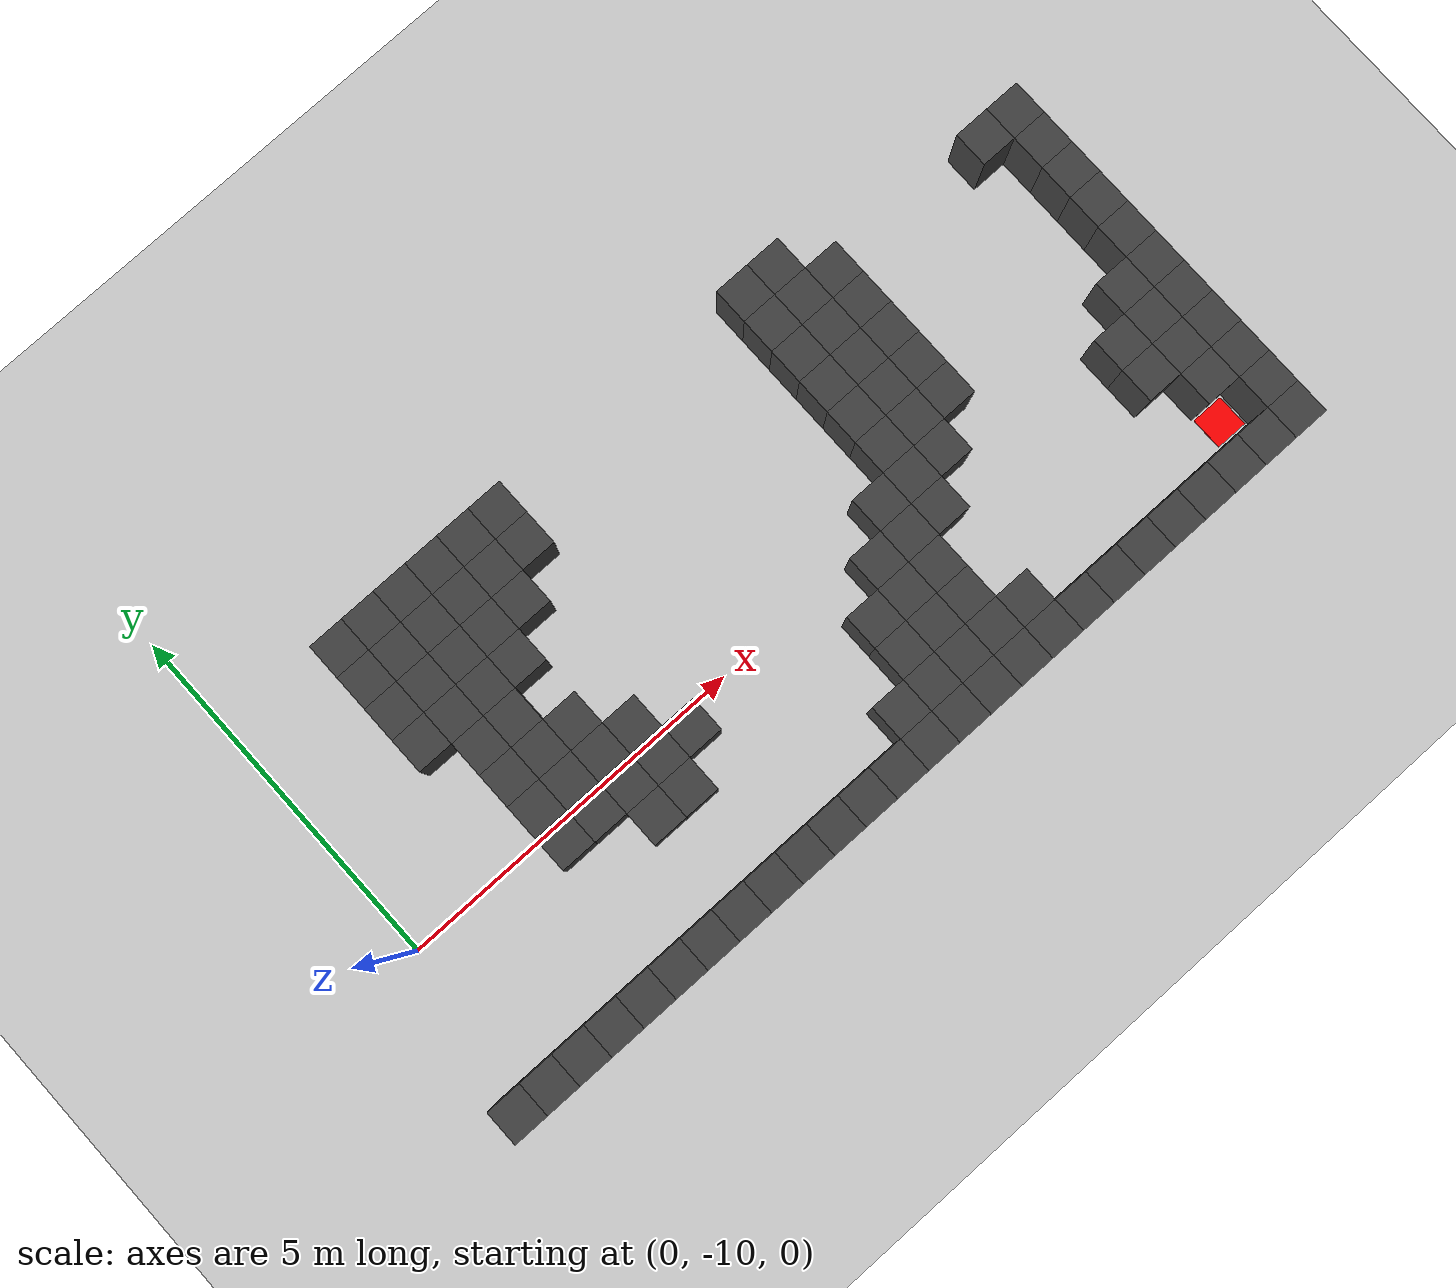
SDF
<sdf version="1.7">
 <world name="map_9152">
  <model name="ground_plane">
   <static>true</static>
   <link name="link">
    <collision name="collision">
     <geometry><plane><normal>0 0 1</normal><size>200 200</size></plane></geometry>
    </collision>
    <visual name="visual">
     <geometry><plane><normal>0 0 1</normal><size>200 200</size></plane></geometry>
     <material><ambient>0.8 0.8 0.8 1</ambient><diffuse>0.8 0.8 0.8 1</diffuse></material>
    </visual>
   </link>
  </model>
  <model name="maze_environment">
   <static>true</static>
   <link name="wall_606">
    <pose>1.750 -6.750 0.500 0 0 0</pose>
    <collision name="col"><geometry><box><size>0.5 0.5 1.0</size></box></geometry></collision>
    <visual name="vis">
     <geometry><box><size>0.5 0.5 1.0</size></box></geometry>
     <material><ambient>0.15 0.15 0.15 1</ambient><diffuse>0.25 0.25 0.25 1</diffuse></material>
    </visual>
   </link>
   <link name="wall_607">
    <pose>2.250 -6.750 0.500 0 0 0</pose>
    <collision name="col"><geometry><box><size>0.5 0.5 1.0</size></box></geometry></collision>
    <visual name="vis">
     <geometry><box><size>0.5 0.5 1.0</size></box></geometry>
     <material><ambient>0.15 0.15 0.15 1</ambient><diffuse>0.25 0.25 0.25 1</diffuse></material>
    </visual>
   </link>
   <link name="wall_608">
    <pose>2.750 -6.750 0.500 0 0 0</pose>
    <collision name="col"><geometry><box><size>0.5 0.5 1.0</size></box></geometry></collision>
    <visual name="vis">
     <geometry><box><size>0.5 0.5 1.0</size></box></geometry>
     <material><ambient>0.15 0.15 0.15 1</ambient><diffuse>0.25 0.25 0.25 1</diffuse></material>
    </visual>
   </link>
   <link name="wall_609">
    <pose>3.250 -6.750 0.500 0 0 0</pose>
    <collision name="col"><geometry><box><size>0.5 0.5 1.0</size></box></geometry></collision>
    <visual name="vis">
     <geometry><box><size>0.5 0.5 1.0</size></box></geometry>
     <material><ambient>0.15 0.15 0.15 1</ambient><diffuse>0.25 0.25 0.25 1</diffuse></material>
    </visual>
   </link>
   <link name="wall_610">
    <pose>3.750 -6.750 0.500 0 0 0</pose>
    <collision name="col"><geometry><box><size>0.5 0.5 1.0</size></box></geometry></collision>
    <visual name="vis">
     <geometry><box><size>0.5 0.5 1.0</size></box></geometry>
     <material><ambient>0.15 0.15 0.15 1</ambient><diffuse>0.25 0.25 0.25 1</diffuse></material>
    </visual>
   </link>
   <link name="wall_611">
    <pose>4.250 -6.750 0.500 0 0 0</pose>
    <collision name="col"><geometry><box><size>0.5 0.5 1.0</size></box></geometry></collision>
    <visual name="vis">
     <geometry><box><size>0.5 0.5 1.0</size></box></geometry>
     <material><ambient>0.15 0.15 0.15 1</ambient><diffuse>0.25 0.25 0.25 1</diffuse></material>
    </visual>
   </link>
   <link name="wall_612">
    <pose>8.250 -6.750 0.500 0 0 0</pose>
    <collision name="col"><geometry><box><size>0.5 0.5 1.0</size></box></geometry></collision>
    <visual name="vis">
     <geometry><box><size>0.5 0.5 1.0</size></box></geometry>
     <material><ambient>0.15 0.15 0.15 1</ambient><diffuse>0.25 0.25 0.25 1</diffuse></material>
    </visual>
   </link>
   <link name="wall_613">
    <pose>8.750 -6.750 0.500 0 0 0</pose>
    <collision name="col"><geometry><box><size>0.5 0.5 1.0</size></box></geometry></collision>
    <visual name="vis">
     <geometry><box><size>0.5 0.5 1.0</size></box></geometry>
     <material><ambient>0.15 0.15 0.15 1</ambient><diffuse>0.25 0.25 0.25 1</diffuse></material>
    </visual>
   </link>
   <link name="wall_624">
    <pose>1.750 -7.250 0.500 0 0 0</pose>
    <collision name="col"><geometry><box><size>0.5 0.5 1.0</size></box></geometry></collision>
    <visual name="vis">
     <geometry><box><size>0.5 0.5 1.0</size></box></geometry>
     <material><ambient>0.15 0.15 0.15 1</ambient><diffuse>0.25 0.25 0.25 1</diffuse></material>
    </visual>
   </link>
   <link name="wall_625">
    <pose>2.250 -7.250 0.500 0 0 0</pose>
    <collision name="col"><geometry><box><size>0.5 0.5 1.0</size></box></geometry></collision>
    <visual name="vis">
     <geometry><box><size>0.5 0.5 1.0</size></box></geometry>
     <material><ambient>0.15 0.15 0.15 1</ambient><diffuse>0.25 0.25 0.25 1</diffuse></material>
    </visual>
   </link>
   <link name="wall_626">
    <pose>2.750 -7.250 0.500 0 0 0</pose>
    <collision name="col"><geometry><box><size>0.5 0.5 1.0</size></box></geometry></collision>
    <visual name="vis">
     <geometry><box><size>0.5 0.5 1.0</size></box></geometry>
     <material><ambient>0.15 0.15 0.15 1</ambient><diffuse>0.25 0.25 0.25 1</diffuse></material>
    </visual>
   </link>
   <link name="wall_627">
    <pose>3.250 -7.250 0.500 0 0 0</pose>
    <collision name="col"><geometry><box><size>0.5 0.5 1.0</size></box></geometry></collision>
    <visual name="vis">
     <geometry><box><size>0.5 0.5 1.0</size></box></geometry>
     <material><ambient>0.15 0.15 0.15 1</ambient><diffuse>0.25 0.25 0.25 1</diffuse></material>
    </visual>
   </link>
   <link name="wall_628">
    <pose>3.750 -7.250 0.500 0 0 0</pose>
    <collision name="col"><geometry><box><size>0.5 0.5 1.0</size></box></geometry></collision>
    <visual name="vis">
     <geometry><box><size>0.5 0.5 1.0</size></box></geometry>
     <material><ambient>0.15 0.15 0.15 1</ambient><diffuse>0.25 0.25 0.25 1</diffuse></material>
    </visual>
   </link>
   <link name="wall_629">
    <pose>4.250 -7.250 0.500 0 0 0</pose>
    <collision name="col"><geometry><box><size>0.5 0.5 1.0</size></box></geometry></collision>
    <visual name="vis">
     <geometry><box><size>0.5 0.5 1.0</size></box></geometry>
     <material><ambient>0.15 0.15 0.15 1</ambient><diffuse>0.25 0.25 0.25 1</diffuse></material>
    </visual>
   </link>
   <link name="wall_630">
    <pose>8.250 -7.250 0.500 0 0 0</pose>
    <collision name="col"><geometry><box><size>0.5 0.5 1.0</size></box></geometry></collision>
    <visual name="vis">
     <geometry><box><size>0.5 0.5 1.0</size></box></geometry>
     <material><ambient>0.15 0.15 0.15 1</ambient><diffuse>0.25 0.25 0.25 1</diffuse></material>
    </visual>
   </link>
   <link name="wall_631">
    <pose>8.750 -7.250 0.500 0 0 0</pose>
    <collision name="col"><geometry><box><size>0.5 0.5 1.0</size></box></geometry></collision>
    <visual name="vis">
     <geometry><box><size>0.5 0.5 1.0</size></box></geometry>
     <material><ambient>0.15 0.15 0.15 1</ambient><diffuse>0.25 0.25 0.25 1</diffuse></material>
    </visual>
   </link>
   <link name="wall_632">
    <pose>9.250 -7.250 0.500 0 0 0</pose>
    <collision name="col"><geometry><box><size>0.5 0.5 1.0</size></box></geometry></collision>
    <visual name="vis">
     <geometry><box><size>0.5 0.5 1.0</size></box></geometry>
     <material><ambient>0.15 0.15 0.15 1</ambient><diffuse>0.25 0.25 0.25 1</diffuse></material>
    </visual>
   </link>
   <link name="wall_633">
    <pose>11.750 -7.250 0.500 0 0 0</pose>
    <collision name="col"><geometry><box><size>0.5 0.5 1.0</size></box></geometry></collision>
    <visual name="vis">
     <geometry><box><size>0.5 0.5 1.0</size></box></geometry>
     <material><ambient>0.15 0.15 0.15 1</ambient><diffuse>0.25 0.25 0.25 1</diffuse></material>
    </visual>
   </link>
   <link name="wall_634">
    <pose>12.250 -7.250 0.500 0 0 0</pose>
    <collision name="col"><geometry><box><size>0.5 0.5 1.0</size></box></geometry></collision>
    <visual name="vis">
     <geometry><box><size>0.5 0.5 1.0</size></box></geometry>
     <material><ambient>0.15 0.15 0.15 1</ambient><diffuse>0.25 0.25 0.25 1</diffuse></material>
    </visual>
   </link>
   <link name="wall_640">
    <pose>1.750 -7.750 0.500 0 0 0</pose>
    <collision name="col"><geometry><box><size>0.5 0.5 1.0</size></box></geometry></collision>
    <visual name="vis">
     <geometry><box><size>0.5 0.5 1.0</size></box></geometry>
     <material><ambient>0.15 0.15 0.15 1</ambient><diffuse>0.25 0.25 0.25 1</diffuse></material>
    </visual>
   </link>
   <link name="wall_641">
    <pose>2.250 -7.750 0.500 0 0 0</pose>
    <collision name="col"><geometry><box><size>0.5 0.5 1.0</size></box></geometry></collision>
    <visual name="vis">
     <geometry><box><size>0.5 0.5 1.0</size></box></geometry>
     <material><ambient>0.15 0.15 0.15 1</ambient><diffuse>0.25 0.25 0.25 1</diffuse></material>
    </visual>
   </link>
   <link name="wall_642">
    <pose>2.750 -7.750 0.500 0 0 0</pose>
    <collision name="col"><geometry><box><size>0.5 0.5 1.0</size></box></geometry></collision>
    <visual name="vis">
     <geometry><box><size>0.5 0.5 1.0</size></box></geometry>
     <material><ambient>0.15 0.15 0.15 1</ambient><diffuse>0.25 0.25 0.25 1</diffuse></material>
    </visual>
   </link>
   <link name="wall_643">
    <pose>3.250 -7.750 0.500 0 0 0</pose>
    <collision name="col"><geometry><box><size>0.5 0.5 1.0</size></box></geometry></collision>
    <visual name="vis">
     <geometry><box><size>0.5 0.5 1.0</size></box></geometry>
     <material><ambient>0.15 0.15 0.15 1</ambient><diffuse>0.25 0.25 0.25 1</diffuse></material>
    </visual>
   </link>
   <link name="wall_644">
    <pose>3.750 -7.750 0.500 0 0 0</pose>
    <collision name="col"><geometry><box><size>0.5 0.5 1.0</size></box></geometry></collision>
    <visual name="vis">
     <geometry><box><size>0.5 0.5 1.0</size></box></geometry>
     <material><ambient>0.15 0.15 0.15 1</ambient><diffuse>0.25 0.25 0.25 1</diffuse></material>
    </visual>
   </link>
   <link name="wall_645">
    <pose>8.250 -7.750 0.500 0 0 0</pose>
    <collision name="col"><geometry><box><size>0.5 0.5 1.0</size></box></geometry></collision>
    <visual name="vis">
     <geometry><box><size>0.5 0.5 1.0</size></box></geometry>
     <material><ambient>0.15 0.15 0.15 1</ambient><diffuse>0.25 0.25 0.25 1</diffuse></material>
    </visual>
   </link>
   <link name="wall_646">
    <pose>8.750 -7.750 0.500 0 0 0</pose>
    <collision name="col"><geometry><box><size>0.5 0.5 1.0</size></box></geometry></collision>
    <visual name="vis">
     <geometry><box><size>0.5 0.5 1.0</size></box></geometry>
     <material><ambient>0.15 0.15 0.15 1</ambient><diffuse>0.25 0.25 0.25 1</diffuse></material>
    </visual>
   </link>
   <link name="wall_647">
    <pose>9.250 -7.750 0.500 0 0 0</pose>
    <collision name="col"><geometry><box><size>0.5 0.5 1.0</size></box></geometry></collision>
    <visual name="vis">
     <geometry><box><size>0.5 0.5 1.0</size></box></geometry>
     <material><ambient>0.15 0.15 0.15 1</ambient><diffuse>0.25 0.25 0.25 1</diffuse></material>
    </visual>
   </link>
   <link name="wall_648">
    <pose>12.250 -7.750 0.500 0 0 0</pose>
    <collision name="col"><geometry><box><size>0.5 0.5 1.0</size></box></geometry></collision>
    <visual name="vis">
     <geometry><box><size>0.5 0.5 1.0</size></box></geometry>
     <material><ambient>0.15 0.15 0.15 1</ambient><diffuse>0.25 0.25 0.25 1</diffuse></material>
    </visual>
   </link>
   <link name="wall_655">
    <pose>1.750 -8.250 0.500 0 0 0</pose>
    <collision name="col"><geometry><box><size>0.5 0.5 1.0</size></box></geometry></collision>
    <visual name="vis">
     <geometry><box><size>0.5 0.5 1.0</size></box></geometry>
     <material><ambient>0.15 0.15 0.15 1</ambient><diffuse>0.25 0.25 0.25 1</diffuse></material>
    </visual>
   </link>
   <link name="wall_656">
    <pose>2.250 -8.250 0.500 0 0 0</pose>
    <collision name="col"><geometry><box><size>0.5 0.5 1.0</size></box></geometry></collision>
    <visual name="vis">
     <geometry><box><size>0.5 0.5 1.0</size></box></geometry>
     <material><ambient>0.15 0.15 0.15 1</ambient><diffuse>0.25 0.25 0.25 1</diffuse></material>
    </visual>
   </link>
   <link name="wall_657">
    <pose>2.750 -8.250 0.500 0 0 0</pose>
    <collision name="col"><geometry><box><size>0.5 0.5 1.0</size></box></geometry></collision>
    <visual name="vis">
     <geometry><box><size>0.5 0.5 1.0</size></box></geometry>
     <material><ambient>0.15 0.15 0.15 1</ambient><diffuse>0.25 0.25 0.25 1</diffuse></material>
    </visual>
   </link>
   <link name="wall_658">
    <pose>3.250 -8.250 0.500 0 0 0</pose>
    <collision name="col"><geometry><box><size>0.5 0.5 1.0</size></box></geometry></collision>
    <visual name="vis">
     <geometry><box><size>0.5 0.5 1.0</size></box></geometry>
     <material><ambient>0.15 0.15 0.15 1</ambient><diffuse>0.25 0.25 0.25 1</diffuse></material>
    </visual>
   </link>
   <link name="wall_659">
    <pose>8.250 -8.250 0.500 0 0 0</pose>
    <collision name="col"><geometry><box><size>0.5 0.5 1.0</size></box></geometry></collision>
    <visual name="vis">
     <geometry><box><size>0.5 0.5 1.0</size></box></geometry>
     <material><ambient>0.15 0.15 0.15 1</ambient><diffuse>0.25 0.25 0.25 1</diffuse></material>
    </visual>
   </link>
   <link name="wall_660">
    <pose>8.750 -8.250 0.500 0 0 0</pose>
    <collision name="col"><geometry><box><size>0.5 0.5 1.0</size></box></geometry></collision>
    <visual name="vis">
     <geometry><box><size>0.5 0.5 1.0</size></box></geometry>
     <material><ambient>0.15 0.15 0.15 1</ambient><diffuse>0.25 0.25 0.25 1</diffuse></material>
    </visual>
   </link>
   <link name="wall_661">
    <pose>9.250 -8.250 0.500 0 0 0</pose>
    <collision name="col"><geometry><box><size>0.5 0.5 1.0</size></box></geometry></collision>
    <visual name="vis">
     <geometry><box><size>0.5 0.5 1.0</size></box></geometry>
     <material><ambient>0.15 0.15 0.15 1</ambient><diffuse>0.25 0.25 0.25 1</diffuse></material>
    </visual>
   </link>
   <link name="wall_662">
    <pose>12.250 -8.250 0.500 0 0 0</pose>
    <collision name="col"><geometry><box><size>0.5 0.5 1.0</size></box></geometry></collision>
    <visual name="vis">
     <geometry><box><size>0.5 0.5 1.0</size></box></geometry>
     <material><ambient>0.15 0.15 0.15 1</ambient><diffuse>0.25 0.25 0.25 1</diffuse></material>
    </visual>
   </link>
   <link name="wall_671">
    <pose>2.250 -8.750 0.500 0 0 0</pose>
    <collision name="col"><geometry><box><size>0.5 0.5 1.0</size></box></geometry></collision>
    <visual name="vis">
     <geometry><box><size>0.5 0.5 1.0</size></box></geometry>
     <material><ambient>0.15 0.15 0.15 1</ambient><diffuse>0.25 0.25 0.25 1</diffuse></material>
    </visual>
   </link>
   <link name="wall_672">
    <pose>2.750 -8.750 0.500 0 0 0</pose>
    <collision name="col"><geometry><box><size>0.5 0.5 1.0</size></box></geometry></collision>
    <visual name="vis">
     <geometry><box><size>0.5 0.5 1.0</size></box></geometry>
     <material><ambient>0.15 0.15 0.15 1</ambient><diffuse>0.25 0.25 0.25 1</diffuse></material>
    </visual>
   </link>
   <link name="wall_673">
    <pose>8.250 -8.750 0.500 0 0 0</pose>
    <collision name="col"><geometry><box><size>0.5 0.5 1.0</size></box></geometry></collision>
    <visual name="vis">
     <geometry><box><size>0.5 0.5 1.0</size></box></geometry>
     <material><ambient>0.15 0.15 0.15 1</ambient><diffuse>0.25 0.25 0.25 1</diffuse></material>
    </visual>
   </link>
   <link name="wall_674">
    <pose>8.750 -8.750 0.500 0 0 0</pose>
    <collision name="col"><geometry><box><size>0.5 0.5 1.0</size></box></geometry></collision>
    <visual name="vis">
     <geometry><box><size>0.5 0.5 1.0</size></box></geometry>
     <material><ambient>0.15 0.15 0.15 1</ambient><diffuse>0.25 0.25 0.25 1</diffuse></material>
    </visual>
   </link>
   <link name="wall_675">
    <pose>9.250 -8.750 0.500 0 0 0</pose>
    <collision name="col"><geometry><box><size>0.5 0.5 1.0</size></box></geometry></collision>
    <visual name="vis">
     <geometry><box><size>0.5 0.5 1.0</size></box></geometry>
     <material><ambient>0.15 0.15 0.15 1</ambient><diffuse>0.25 0.25 0.25 1</diffuse></material>
    </visual>
   </link>
   <link name="wall_676">
    <pose>12.250 -8.750 0.500 0 0 0</pose>
    <collision name="col"><geometry><box><size>0.5 0.5 1.0</size></box></geometry></collision>
    <visual name="vis">
     <geometry><box><size>0.5 0.5 1.0</size></box></geometry>
     <material><ambient>0.15 0.15 0.15 1</ambient><diffuse>0.25 0.25 0.25 1</diffuse></material>
    </visual>
   </link>
   <link name="wall_685">
    <pose>2.250 -9.250 0.500 0 0 0</pose>
    <collision name="col"><geometry><box><size>0.5 0.5 1.0</size></box></geometry></collision>
    <visual name="vis">
     <geometry><box><size>0.5 0.5 1.0</size></box></geometry>
     <material><ambient>0.15 0.15 0.15 1</ambient><diffuse>0.25 0.25 0.25 1</diffuse></material>
    </visual>
   </link>
   <link name="wall_686">
    <pose>2.750 -9.250 0.500 0 0 0</pose>
    <collision name="col"><geometry><box><size>0.5 0.5 1.0</size></box></geometry></collision>
    <visual name="vis">
     <geometry><box><size>0.5 0.5 1.0</size></box></geometry>
     <material><ambient>0.15 0.15 0.15 1</ambient><diffuse>0.25 0.25 0.25 1</diffuse></material>
    </visual>
   </link>
   <link name="wall_687">
    <pose>3.250 -9.250 0.500 0 0 0</pose>
    <collision name="col"><geometry><box><size>0.5 0.5 1.0</size></box></geometry></collision>
    <visual name="vis">
     <geometry><box><size>0.5 0.5 1.0</size></box></geometry>
     <material><ambient>0.15 0.15 0.15 1</ambient><diffuse>0.25 0.25 0.25 1</diffuse></material>
    </visual>
   </link>
   <link name="wall_688">
    <pose>8.250 -9.250 0.500 0 0 0</pose>
    <collision name="col"><geometry><box><size>0.5 0.5 1.0</size></box></geometry></collision>
    <visual name="vis">
     <geometry><box><size>0.5 0.5 1.0</size></box></geometry>
     <material><ambient>0.15 0.15 0.15 1</ambient><diffuse>0.25 0.25 0.25 1</diffuse></material>
    </visual>
   </link>
   <link name="wall_689">
    <pose>8.750 -9.250 0.500 0 0 0</pose>
    <collision name="col"><geometry><box><size>0.5 0.5 1.0</size></box></geometry></collision>
    <visual name="vis">
     <geometry><box><size>0.5 0.5 1.0</size></box></geometry>
     <material><ambient>0.15 0.15 0.15 1</ambient><diffuse>0.25 0.25 0.25 1</diffuse></material>
    </visual>
   </link>
   <link name="wall_690">
    <pose>9.250 -9.250 0.500 0 0 0</pose>
    <collision name="col"><geometry><box><size>0.5 0.5 1.0</size></box></geometry></collision>
    <visual name="vis">
     <geometry><box><size>0.5 0.5 1.0</size></box></geometry>
     <material><ambient>0.15 0.15 0.15 1</ambient><diffuse>0.25 0.25 0.25 1</diffuse></material>
    </visual>
   </link>
   <link name="wall_691">
    <pose>12.250 -9.250 0.500 0 0 0</pose>
    <collision name="col"><geometry><box><size>0.5 0.5 1.0</size></box></geometry></collision>
    <visual name="vis">
     <geometry><box><size>0.5 0.5 1.0</size></box></geometry>
     <material><ambient>0.15 0.15 0.15 1</ambient><diffuse>0.25 0.25 0.25 1</diffuse></material>
    </visual>
   </link>
   <link name="wall_697">
    <pose>2.250 -9.750 0.500 0 0 0</pose>
    <collision name="col"><geometry><box><size>0.5 0.5 1.0</size></box></geometry></collision>
    <visual name="vis">
     <geometry><box><size>0.5 0.5 1.0</size></box></geometry>
     <material><ambient>0.15 0.15 0.15 1</ambient><diffuse>0.25 0.25 0.25 1</diffuse></material>
    </visual>
   </link>
   <link name="wall_698">
    <pose>2.750 -9.750 0.500 0 0 0</pose>
    <collision name="col"><geometry><box><size>0.5 0.5 1.0</size></box></geometry></collision>
    <visual name="vis">
     <geometry><box><size>0.5 0.5 1.0</size></box></geometry>
     <material><ambient>0.15 0.15 0.15 1</ambient><diffuse>0.25 0.25 0.25 1</diffuse></material>
    </visual>
   </link>
   <link name="wall_699">
    <pose>3.250 -9.750 0.500 0 0 0</pose>
    <collision name="col"><geometry><box><size>0.5 0.5 1.0</size></box></geometry></collision>
    <visual name="vis">
     <geometry><box><size>0.5 0.5 1.0</size></box></geometry>
     <material><ambient>0.15 0.15 0.15 1</ambient><diffuse>0.25 0.25 0.25 1</diffuse></material>
    </visual>
   </link>
   <link name="wall_700">
    <pose>3.750 -9.750 0.500 0 0 0</pose>
    <collision name="col"><geometry><box><size>0.5 0.5 1.0</size></box></geometry></collision>
    <visual name="vis">
     <geometry><box><size>0.5 0.5 1.0</size></box></geometry>
     <material><ambient>0.15 0.15 0.15 1</ambient><diffuse>0.25 0.25 0.25 1</diffuse></material>
    </visual>
   </link>
   <link name="wall_701">
    <pose>7.750 -9.750 0.500 0 0 0</pose>
    <collision name="col"><geometry><box><size>0.5 0.5 1.0</size></box></geometry></collision>
    <visual name="vis">
     <geometry><box><size>0.5 0.5 1.0</size></box></geometry>
     <material><ambient>0.15 0.15 0.15 1</ambient><diffuse>0.25 0.25 0.25 1</diffuse></material>
    </visual>
   </link>
   <link name="wall_702">
    <pose>8.250 -9.750 0.500 0 0 0</pose>
    <collision name="col"><geometry><box><size>0.5 0.5 1.0</size></box></geometry></collision>
    <visual name="vis">
     <geometry><box><size>0.5 0.5 1.0</size></box></geometry>
     <material><ambient>0.15 0.15 0.15 1</ambient><diffuse>0.25 0.25 0.25 1</diffuse></material>
    </visual>
   </link>
   <link name="wall_703">
    <pose>8.750 -9.750 0.500 0 0 0</pose>
    <collision name="col"><geometry><box><size>0.5 0.5 1.0</size></box></geometry></collision>
    <visual name="vis">
     <geometry><box><size>0.5 0.5 1.0</size></box></geometry>
     <material><ambient>0.15 0.15 0.15 1</ambient><diffuse>0.25 0.25 0.25 1</diffuse></material>
    </visual>
   </link>
   <link name="wall_704">
    <pose>11.750 -9.750 0.500 0 0 0</pose>
    <collision name="col"><geometry><box><size>0.5 0.5 1.0</size></box></geometry></collision>
    <visual name="vis">
     <geometry><box><size>0.5 0.5 1.0</size></box></geometry>
     <material><ambient>0.15 0.15 0.15 1</ambient><diffuse>0.25 0.25 0.25 1</diffuse></material>
    </visual>
   </link>
   <link name="wall_705">
    <pose>12.250 -9.750 0.500 0 0 0</pose>
    <collision name="col"><geometry><box><size>0.5 0.5 1.0</size></box></geometry></collision>
    <visual name="vis">
     <geometry><box><size>0.5 0.5 1.0</size></box></geometry>
     <material><ambient>0.15 0.15 0.15 1</ambient><diffuse>0.25 0.25 0.25 1</diffuse></material>
    </visual>
   </link>
   <link name="wall_710">
    <pose>2.250 -10.250 0.500 0 0 0</pose>
    <collision name="col"><geometry><box><size>0.5 0.5 1.0</size></box></geometry></collision>
    <visual name="vis">
     <geometry><box><size>0.5 0.5 1.0</size></box></geometry>
     <material><ambient>0.15 0.15 0.15 1</ambient><diffuse>0.25 0.25 0.25 1</diffuse></material>
    </visual>
   </link>
   <link name="wall_711">
    <pose>2.750 -10.250 0.500 0 0 0</pose>
    <collision name="col"><geometry><box><size>0.5 0.5 1.0</size></box></geometry></collision>
    <visual name="vis">
     <geometry><box><size>0.5 0.5 1.0</size></box></geometry>
     <material><ambient>0.15 0.15 0.15 1</ambient><diffuse>0.25 0.25 0.25 1</diffuse></material>
    </visual>
   </link>
   <link name="wall_712">
    <pose>3.250 -10.250 0.500 0 0 0</pose>
    <collision name="col"><geometry><box><size>0.5 0.5 1.0</size></box></geometry></collision>
    <visual name="vis">
     <geometry><box><size>0.5 0.5 1.0</size></box></geometry>
     <material><ambient>0.15 0.15 0.15 1</ambient><diffuse>0.25 0.25 0.25 1</diffuse></material>
    </visual>
   </link>
   <link name="wall_713">
    <pose>3.750 -10.250 0.500 0 0 0</pose>
    <collision name="col"><geometry><box><size>0.5 0.5 1.0</size></box></geometry></collision>
    <visual name="vis">
     <geometry><box><size>0.5 0.5 1.0</size></box></geometry>
     <material><ambient>0.15 0.15 0.15 1</ambient><diffuse>0.25 0.25 0.25 1</diffuse></material>
    </visual>
   </link>
   <link name="wall_714">
    <pose>4.250 -10.250 0.500 0 0 0</pose>
    <collision name="col"><geometry><box><size>0.5 0.5 1.0</size></box></geometry></collision>
    <visual name="vis">
     <geometry><box><size>0.5 0.5 1.0</size></box></geometry>
     <material><ambient>0.15 0.15 0.15 1</ambient><diffuse>0.25 0.25 0.25 1</diffuse></material>
    </visual>
   </link>
   <link name="wall_715">
    <pose>7.250 -10.250 0.500 0 0 0</pose>
    <collision name="col"><geometry><box><size>0.5 0.5 1.0</size></box></geometry></collision>
    <visual name="vis">
     <geometry><box><size>0.5 0.5 1.0</size></box></geometry>
     <material><ambient>0.15 0.15 0.15 1</ambient><diffuse>0.25 0.25 0.25 1</diffuse></material>
    </visual>
   </link>
   <link name="wall_716">
    <pose>7.750 -10.250 0.500 0 0 0</pose>
    <collision name="col"><geometry><box><size>0.5 0.5 1.0</size></box></geometry></collision>
    <visual name="vis">
     <geometry><box><size>0.5 0.5 1.0</size></box></geometry>
     <material><ambient>0.15 0.15 0.15 1</ambient><diffuse>0.25 0.25 0.25 1</diffuse></material>
    </visual>
   </link>
   <link name="wall_717">
    <pose>8.250 -10.250 0.500 0 0 0</pose>
    <collision name="col"><geometry><box><size>0.5 0.5 1.0</size></box></geometry></collision>
    <visual name="vis">
     <geometry><box><size>0.5 0.5 1.0</size></box></geometry>
     <material><ambient>0.15 0.15 0.15 1</ambient><diffuse>0.25 0.25 0.25 1</diffuse></material>
    </visual>
   </link>
   <link name="wall_718">
    <pose>11.250 -10.250 0.500 0 0 0</pose>
    <collision name="col"><geometry><box><size>0.5 0.5 1.0</size></box></geometry></collision>
    <visual name="vis">
     <geometry><box><size>0.5 0.5 1.0</size></box></geometry>
     <material><ambient>0.15 0.15 0.15 1</ambient><diffuse>0.25 0.25 0.25 1</diffuse></material>
    </visual>
   </link>
   <link name="wall_719">
    <pose>11.750 -10.250 0.500 0 0 0</pose>
    <collision name="col"><geometry><box><size>0.5 0.5 1.0</size></box></geometry></collision>
    <visual name="vis">
     <geometry><box><size>0.5 0.5 1.0</size></box></geometry>
     <material><ambient>0.15 0.15 0.15 1</ambient><diffuse>0.25 0.25 0.25 1</diffuse></material>
    </visual>
   </link>
   <link name="wall_720">
    <pose>12.250 -10.250 0.500 0 0 0</pose>
    <collision name="col"><geometry><box><size>0.5 0.5 1.0</size></box></geometry></collision>
    <visual name="vis">
     <geometry><box><size>0.5 0.5 1.0</size></box></geometry>
     <material><ambient>0.15 0.15 0.15 1</ambient><diffuse>0.25 0.25 0.25 1</diffuse></material>
    </visual>
   </link>
   <link name="wall_723">
    <pose>3.250 -10.750 0.500 0 0 0</pose>
    <collision name="col"><geometry><box><size>0.5 0.5 1.0</size></box></geometry></collision>
    <visual name="vis">
     <geometry><box><size>0.5 0.5 1.0</size></box></geometry>
     <material><ambient>0.15 0.15 0.15 1</ambient><diffuse>0.25 0.25 0.25 1</diffuse></material>
    </visual>
   </link>
   <link name="wall_724">
    <pose>3.750 -10.750 0.500 0 0 0</pose>
    <collision name="col"><geometry><box><size>0.5 0.5 1.0</size></box></geometry></collision>
    <visual name="vis">
     <geometry><box><size>0.5 0.5 1.0</size></box></geometry>
     <material><ambient>0.15 0.15 0.15 1</ambient><diffuse>0.25 0.25 0.25 1</diffuse></material>
    </visual>
   </link>
   <link name="wall_725">
    <pose>6.750 -10.750 0.500 0 0 0</pose>
    <collision name="col"><geometry><box><size>0.5 0.5 1.0</size></box></geometry></collision>
    <visual name="vis">
     <geometry><box><size>0.5 0.5 1.0</size></box></geometry>
     <material><ambient>0.15 0.15 0.15 1</ambient><diffuse>0.25 0.25 0.25 1</diffuse></material>
    </visual>
   </link>
   <link name="wall_726">
    <pose>7.250 -10.750 0.500 0 0 0</pose>
    <collision name="col"><geometry><box><size>0.5 0.5 1.0</size></box></geometry></collision>
    <visual name="vis">
     <geometry><box><size>0.5 0.5 1.0</size></box></geometry>
     <material><ambient>0.15 0.15 0.15 1</ambient><diffuse>0.25 0.25 0.25 1</diffuse></material>
    </visual>
   </link>
   <link name="wall_727">
    <pose>7.750 -10.750 0.500 0 0 0</pose>
    <collision name="col"><geometry><box><size>0.5 0.5 1.0</size></box></geometry></collision>
    <visual name="vis">
     <geometry><box><size>0.5 0.5 1.0</size></box></geometry>
     <material><ambient>0.15 0.15 0.15 1</ambient><diffuse>0.25 0.25 0.25 1</diffuse></material>
    </visual>
   </link>
   <link name="wall_728">
    <pose>11.250 -10.750 0.500 0 0 0</pose>
    <collision name="col"><geometry><box><size>0.5 0.5 1.0</size></box></geometry></collision>
    <visual name="vis">
     <geometry><box><size>0.5 0.5 1.0</size></box></geometry>
     <material><ambient>0.15 0.15 0.15 1</ambient><diffuse>0.25 0.25 0.25 1</diffuse></material>
    </visual>
   </link>
   <link name="wall_729">
    <pose>11.750 -10.750 0.500 0 0 0</pose>
    <collision name="col"><geometry><box><size>0.5 0.5 1.0</size></box></geometry></collision>
    <visual name="vis">
     <geometry><box><size>0.5 0.5 1.0</size></box></geometry>
     <material><ambient>0.15 0.15 0.15 1</ambient><diffuse>0.25 0.25 0.25 1</diffuse></material>
    </visual>
   </link>
   <link name="wall_730">
    <pose>12.250 -10.750 0.500 0 0 0</pose>
    <collision name="col"><geometry><box><size>0.5 0.5 1.0</size></box></geometry></collision>
    <visual name="vis">
     <geometry><box><size>0.5 0.5 1.0</size></box></geometry>
     <material><ambient>0.15 0.15 0.15 1</ambient><diffuse>0.25 0.25 0.25 1</diffuse></material>
    </visual>
   </link>
   <link name="wall_734">
    <pose>6.750 -11.250 0.500 0 0 0</pose>
    <collision name="col"><geometry><box><size>0.5 0.5 1.0</size></box></geometry></collision>
    <visual name="vis">
     <geometry><box><size>0.5 0.5 1.0</size></box></geometry>
     <material><ambient>0.15 0.15 0.15 1</ambient><diffuse>0.25 0.25 0.25 1</diffuse></material>
    </visual>
   </link>
   <link name="wall_735">
    <pose>7.250 -11.250 0.500 0 0 0</pose>
    <collision name="col"><geometry><box><size>0.5 0.5 1.0</size></box></geometry></collision>
    <visual name="vis">
     <geometry><box><size>0.5 0.5 1.0</size></box></geometry>
     <material><ambient>0.15 0.15 0.15 1</ambient><diffuse>0.25 0.25 0.25 1</diffuse></material>
    </visual>
   </link>
   <link name="wall_736">
    <pose>7.750 -11.250 0.500 0 0 0</pose>
    <collision name="col"><geometry><box><size>0.5 0.5 1.0</size></box></geometry></collision>
    <visual name="vis">
     <geometry><box><size>0.5 0.5 1.0</size></box></geometry>
     <material><ambient>0.15 0.15 0.15 1</ambient><diffuse>0.25 0.25 0.25 1</diffuse></material>
    </visual>
   </link>
   <link name="wall_737">
    <pose>11.750 -11.250 0.500 0 0 0</pose>
    <collision name="col"><geometry><box><size>0.5 0.5 1.0</size></box></geometry></collision>
    <visual name="vis">
     <geometry><box><size>0.5 0.5 1.0</size></box></geometry>
     <material><ambient>0.15 0.15 0.15 1</ambient><diffuse>0.25 0.25 0.25 1</diffuse></material>
    </visual>
   </link>
   <link name="wall_738">
    <pose>12.250 -11.250 0.500 0 0 0</pose>
    <collision name="col"><geometry><box><size>0.5 0.5 1.0</size></box></geometry></collision>
    <visual name="vis">
     <geometry><box><size>0.5 0.5 1.0</size></box></geometry>
     <material><ambient>0.15 0.15 0.15 1</ambient><diffuse>0.25 0.25 0.25 1</diffuse></material>
    </visual>
   </link>
   <link name="wall_747">
    <pose>6.250 -11.750 0.500 0 0 0</pose>
    <collision name="col"><geometry><box><size>0.5 0.5 1.0</size></box></geometry></collision>
    <visual name="vis">
     <geometry><box><size>0.5 0.5 1.0</size></box></geometry>
     <material><ambient>0.15 0.15 0.15 1</ambient><diffuse>0.25 0.25 0.25 1</diffuse></material>
    </visual>
   </link>
   <link name="wall_748">
    <pose>6.750 -11.750 0.500 0 0 0</pose>
    <collision name="col"><geometry><box><size>0.5 0.5 1.0</size></box></geometry></collision>
    <visual name="vis">
     <geometry><box><size>0.5 0.5 1.0</size></box></geometry>
     <material><ambient>0.15 0.15 0.15 1</ambient><diffuse>0.25 0.25 0.25 1</diffuse></material>
    </visual>
   </link>
   <link name="wall_749">
    <pose>7.250 -11.750 0.500 0 0 0</pose>
    <collision name="col"><geometry><box><size>0.5 0.5 1.0</size></box></geometry></collision>
    <visual name="vis">
     <geometry><box><size>0.5 0.5 1.0</size></box></geometry>
     <material><ambient>0.15 0.15 0.15 1</ambient><diffuse>0.25 0.25 0.25 1</diffuse></material>
    </visual>
   </link>
   <link name="wall_750">
    <pose>7.750 -11.750 0.500 0 0 0</pose>
    <collision name="col"><geometry><box><size>0.5 0.5 1.0</size></box></geometry></collision>
    <visual name="vis">
     <geometry><box><size>0.5 0.5 1.0</size></box></geometry>
     <material><ambient>0.15 0.15 0.15 1</ambient><diffuse>0.25 0.25 0.25 1</diffuse></material>
    </visual>
   </link>
   <link name="wall_751">
    <pose>8.250 -11.750 0.500 0 0 0</pose>
    <collision name="col"><geometry><box><size>0.5 0.5 1.0</size></box></geometry></collision>
    <visual name="vis">
     <geometry><box><size>0.5 0.5 1.0</size></box></geometry>
     <material><ambient>0.15 0.15 0.15 1</ambient><diffuse>0.25 0.25 0.25 1</diffuse></material>
    </visual>
   </link>
   <link name="wall_752">
    <pose>12.250 -11.750 0.500 0 0 0</pose>
    <collision name="col"><geometry><box><size>0.5 0.5 1.0</size></box></geometry></collision>
    <visual name="vis">
     <geometry><box><size>0.5 0.5 1.0</size></box></geometry>
     <material><ambient>0.15 0.15 0.15 1</ambient><diffuse>0.25 0.25 0.25 1</diffuse></material>
    </visual>
   </link>
   <link name="wall_777">
    <pose>-0.250 -12.250 0.500 0 0 0</pose>
    <collision name="col"><geometry><box><size>0.5 0.5 1.0</size></box></geometry></collision>
    <visual name="vis">
     <geometry><box><size>0.5 0.5 1.0</size></box></geometry>
     <material><ambient>0.15 0.15 0.15 1</ambient><diffuse>0.25 0.25 0.25 1</diffuse></material>
    </visual>
   </link>
   <link name="wall_778">
    <pose>0.250 -12.250 0.500 0 0 0</pose>
    <collision name="col"><geometry><box><size>0.5 0.5 1.0</size></box></geometry></collision>
    <visual name="vis">
     <geometry><box><size>0.5 0.5 1.0</size></box></geometry>
     <material><ambient>0.15 0.15 0.15 1</ambient><diffuse>0.25 0.25 0.25 1</diffuse></material>
    </visual>
   </link>
   <link name="wall_779">
    <pose>0.750 -12.250 0.500 0 0 0</pose>
    <collision name="col"><geometry><box><size>0.5 0.5 1.0</size></box></geometry></collision>
    <visual name="vis">
     <geometry><box><size>0.5 0.5 1.0</size></box></geometry>
     <material><ambient>0.15 0.15 0.15 1</ambient><diffuse>0.25 0.25 0.25 1</diffuse></material>
    </visual>
   </link>
   <link name="wall_780">
    <pose>1.250 -12.250 0.500 0 0 0</pose>
    <collision name="col"><geometry><box><size>0.5 0.5 1.0</size></box></geometry></collision>
    <visual name="vis">
     <geometry><box><size>0.5 0.5 1.0</size></box></geometry>
     <material><ambient>0.15 0.15 0.15 1</ambient><diffuse>0.25 0.25 0.25 1</diffuse></material>
    </visual>
   </link>
   <link name="wall_781">
    <pose>1.750 -12.250 0.500 0 0 0</pose>
    <collision name="col"><geometry><box><size>0.5 0.5 1.0</size></box></geometry></collision>
    <visual name="vis">
     <geometry><box><size>0.5 0.5 1.0</size></box></geometry>
     <material><ambient>0.15 0.15 0.15 1</ambient><diffuse>0.25 0.25 0.25 1</diffuse></material>
    </visual>
   </link>
   <link name="wall_782">
    <pose>2.250 -12.250 0.500 0 0 0</pose>
    <collision name="col"><geometry><box><size>0.5 0.5 1.0</size></box></geometry></collision>
    <visual name="vis">
     <geometry><box><size>0.5 0.5 1.0</size></box></geometry>
     <material><ambient>0.15 0.15 0.15 1</ambient><diffuse>0.25 0.25 0.25 1</diffuse></material>
    </visual>
   </link>
   <link name="wall_783">
    <pose>2.750 -12.250 0.500 0 0 0</pose>
    <collision name="col"><geometry><box><size>0.5 0.5 1.0</size></box></geometry></collision>
    <visual name="vis">
     <geometry><box><size>0.5 0.5 1.0</size></box></geometry>
     <material><ambient>0.15 0.15 0.15 1</ambient><diffuse>0.25 0.25 0.25 1</diffuse></material>
    </visual>
   </link>
   <link name="wall_784">
    <pose>3.250 -12.250 0.500 0 0 0</pose>
    <collision name="col"><geometry><box><size>0.5 0.5 1.0</size></box></geometry></collision>
    <visual name="vis">
     <geometry><box><size>0.5 0.5 1.0</size></box></geometry>
     <material><ambient>0.15 0.15 0.15 1</ambient><diffuse>0.25 0.25 0.25 1</diffuse></material>
    </visual>
   </link>
   <link name="wall_785">
    <pose>3.750 -12.250 0.500 0 0 0</pose>
    <collision name="col"><geometry><box><size>0.5 0.5 1.0</size></box></geometry></collision>
    <visual name="vis">
     <geometry><box><size>0.5 0.5 1.0</size></box></geometry>
     <material><ambient>0.15 0.15 0.15 1</ambient><diffuse>0.25 0.25 0.25 1</diffuse></material>
    </visual>
   </link>
   <link name="wall_786">
    <pose>4.250 -12.250 0.500 0 0 0</pose>
    <collision name="col"><geometry><box><size>0.5 0.5 1.0</size></box></geometry></collision>
    <visual name="vis">
     <geometry><box><size>0.5 0.5 1.0</size></box></geometry>
     <material><ambient>0.15 0.15 0.15 1</ambient><diffuse>0.25 0.25 0.25 1</diffuse></material>
    </visual>
   </link>
   <link name="wall_787">
    <pose>4.750 -12.250 0.500 0 0 0</pose>
    <collision name="col"><geometry><box><size>0.5 0.5 1.0</size></box></geometry></collision>
    <visual name="vis">
     <geometry><box><size>0.5 0.5 1.0</size></box></geometry>
     <material><ambient>0.15 0.15 0.15 1</ambient><diffuse>0.25 0.25 0.25 1</diffuse></material>
    </visual>
   </link>
   <link name="wall_788">
    <pose>5.250 -12.250 0.500 0 0 0</pose>
    <collision name="col"><geometry><box><size>0.5 0.5 1.0</size></box></geometry></collision>
    <visual name="vis">
     <geometry><box><size>0.5 0.5 1.0</size></box></geometry>
     <material><ambient>0.15 0.15 0.15 1</ambient><diffuse>0.25 0.25 0.25 1</diffuse></material>
    </visual>
   </link>
   <link name="wall_789">
    <pose>5.750 -12.250 0.500 0 0 0</pose>
    <collision name="col"><geometry><box><size>0.5 0.5 1.0</size></box></geometry></collision>
    <visual name="vis">
     <geometry><box><size>0.5 0.5 1.0</size></box></geometry>
     <material><ambient>0.15 0.15 0.15 1</ambient><diffuse>0.25 0.25 0.25 1</diffuse></material>
    </visual>
   </link>
   <link name="wall_790">
    <pose>6.250 -12.250 0.500 0 0 0</pose>
    <collision name="col"><geometry><box><size>0.5 0.5 1.0</size></box></geometry></collision>
    <visual name="vis">
     <geometry><box><size>0.5 0.5 1.0</size></box></geometry>
     <material><ambient>0.15 0.15 0.15 1</ambient><diffuse>0.25 0.25 0.25 1</diffuse></material>
    </visual>
   </link>
   <link name="wall_791">
    <pose>6.750 -12.250 0.500 0 0 0</pose>
    <collision name="col"><geometry><box><size>0.5 0.5 1.0</size></box></geometry></collision>
    <visual name="vis">
     <geometry><box><size>0.5 0.5 1.0</size></box></geometry>
     <material><ambient>0.15 0.15 0.15 1</ambient><diffuse>0.25 0.25 0.25 1</diffuse></material>
    </visual>
   </link>
   <link name="wall_792">
    <pose>7.250 -12.250 0.500 0 0 0</pose>
    <collision name="col"><geometry><box><size>0.5 0.5 1.0</size></box></geometry></collision>
    <visual name="vis">
     <geometry><box><size>0.5 0.5 1.0</size></box></geometry>
     <material><ambient>0.15 0.15 0.15 1</ambient><diffuse>0.25 0.25 0.25 1</diffuse></material>
    </visual>
   </link>
   <link name="wall_793">
    <pose>7.750 -12.250 0.500 0 0 0</pose>
    <collision name="col"><geometry><box><size>0.5 0.5 1.0</size></box></geometry></collision>
    <visual name="vis">
     <geometry><box><size>0.5 0.5 1.0</size></box></geometry>
     <material><ambient>0.15 0.15 0.15 1</ambient><diffuse>0.25 0.25 0.25 1</diffuse></material>
    </visual>
   </link>
   <link name="wall_794">
    <pose>8.250 -12.250 0.500 0 0 0</pose>
    <collision name="col"><geometry><box><size>0.5 0.5 1.0</size></box></geometry></collision>
    <visual name="vis">
     <geometry><box><size>0.5 0.5 1.0</size></box></geometry>
     <material><ambient>0.15 0.15 0.15 1</ambient><diffuse>0.25 0.25 0.25 1</diffuse></material>
    </visual>
   </link>
   <link name="wall_795">
    <pose>8.750 -12.250 0.500 0 0 0</pose>
    <collision name="col"><geometry><box><size>0.5 0.5 1.0</size></box></geometry></collision>
    <visual name="vis">
     <geometry><box><size>0.5 0.5 1.0</size></box></geometry>
     <material><ambient>0.15 0.15 0.15 1</ambient><diffuse>0.25 0.25 0.25 1</diffuse></material>
    </visual>
   </link>
   <link name="wall_796">
    <pose>9.250 -12.250 0.500 0 0 0</pose>
    <collision name="col"><geometry><box><size>0.5 0.5 1.0</size></box></geometry></collision>
    <visual name="vis">
     <geometry><box><size>0.5 0.5 1.0</size></box></geometry>
     <material><ambient>0.15 0.15 0.15 1</ambient><diffuse>0.25 0.25 0.25 1</diffuse></material>
    </visual>
   </link>
   <link name="wall_797">
    <pose>9.750 -12.250 0.500 0 0 0</pose>
    <collision name="col"><geometry><box><size>0.5 0.5 1.0</size></box></geometry></collision>
    <visual name="vis">
     <geometry><box><size>0.5 0.5 1.0</size></box></geometry>
     <material><ambient>0.15 0.15 0.15 1</ambient><diffuse>0.25 0.25 0.25 1</diffuse></material>
    </visual>
   </link>
   <link name="wall_798">
    <pose>10.250 -12.250 0.500 0 0 0</pose>
    <collision name="col"><geometry><box><size>0.5 0.5 1.0</size></box></geometry></collision>
    <visual name="vis">
     <geometry><box><size>0.5 0.5 1.0</size></box></geometry>
     <material><ambient>0.15 0.15 0.15 1</ambient><diffuse>0.25 0.25 0.25 1</diffuse></material>
    </visual>
   </link>
   <link name="wall_799">
    <pose>10.750 -12.250 0.500 0 0 0</pose>
    <collision name="col"><geometry><box><size>0.5 0.5 1.0</size></box></geometry></collision>
    <visual name="vis">
     <geometry><box><size>0.5 0.5 1.0</size></box></geometry>
     <material><ambient>0.15 0.15 0.15 1</ambient><diffuse>0.25 0.25 0.25 1</diffuse></material>
    </visual>
   </link>
   <link name="wall_800">
    <pose>11.250 -12.250 0.500 0 0 0</pose>
    <collision name="col"><geometry><box><size>0.5 0.5 1.0</size></box></geometry></collision>
    <visual name="vis">
     <geometry><box><size>0.5 0.5 1.0</size></box></geometry>
     <material><ambient>0.15 0.15 0.15 1</ambient><diffuse>0.25 0.25 0.25 1</diffuse></material>
    </visual>
   </link>
   <link name="wall_801">
    <pose>11.750 -12.250 0.500 0 0 0</pose>
    <collision name="col"><geometry><box><size>0.5 0.5 1.0</size></box></geometry></collision>
    <visual name="vis">
     <geometry><box><size>0.5 0.5 1.0</size></box></geometry>
     <material><ambient>0.15 0.15 0.15 1</ambient><diffuse>0.25 0.25 0.25 1</diffuse></material>
    </visual>
   </link>
   <link name="wall_802">
    <pose>12.250 -12.250 0.500 0 0 0</pose>
    <collision name="col"><geometry><box><size>0.5 0.5 1.0</size></box></geometry></collision>
    <visual name="vis">
     <geometry><box><size>0.5 0.5 1.0</size></box></geometry>
     <material><ambient>0.15 0.15 0.15 1</ambient><diffuse>0.25 0.25 0.25 1</diffuse></material>
    </visual>
   </link>
   <link name="goal_zone">
    <pose>11.750 -11.750 0.005 0 0 0</pose>
    <visual name="vis">
     <geometry><box><size>0.45 0.45 0.01</size></box></geometry>
     <material>
      <ambient>1.0 0.0 0.0 1</ambient>
      <diffuse>1.0 0.0 0.0 1</diffuse>
      <emissive>0.60 0.00 0.00 1</emissive>
     </material>
    </visual>
   </link>
  </model>
 </world>
</sdf>
